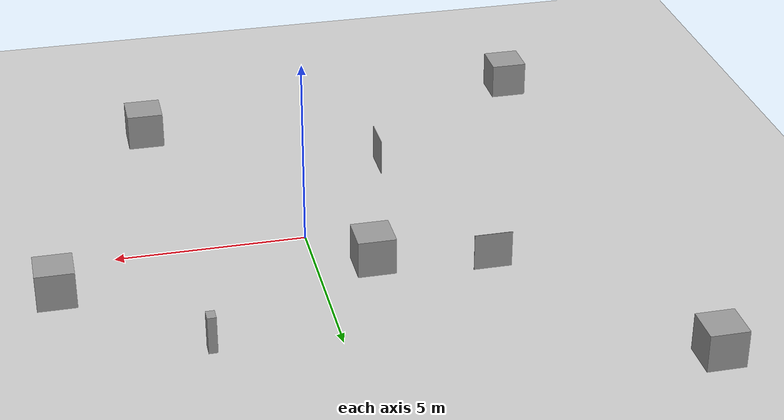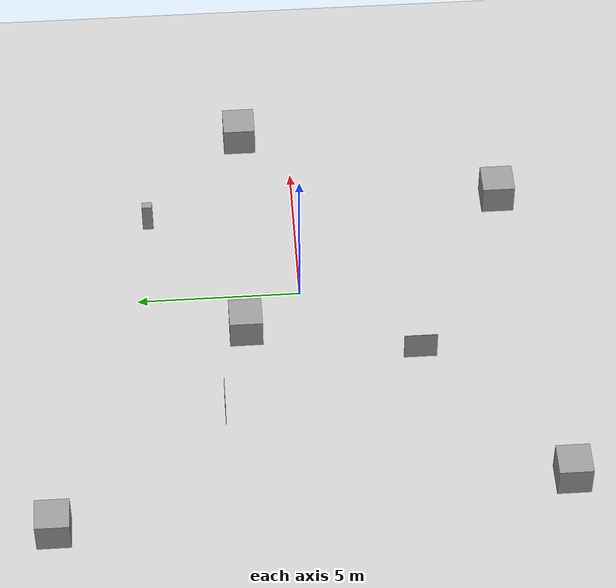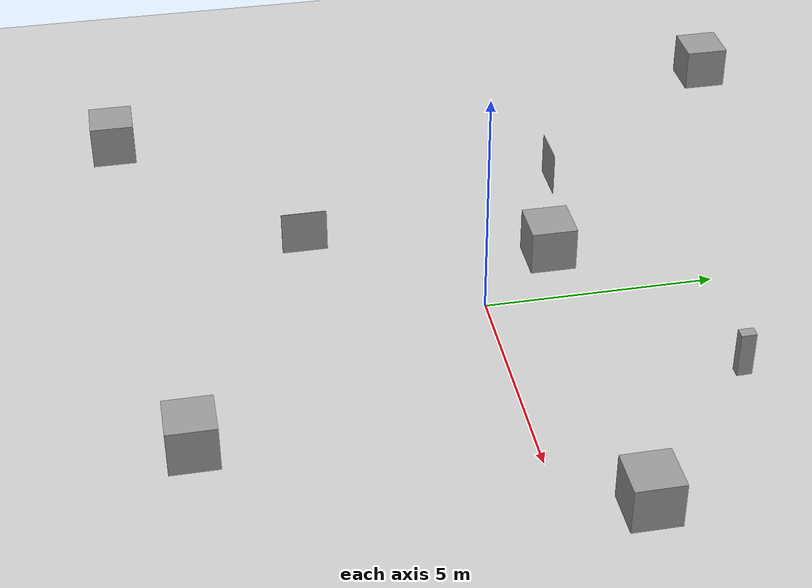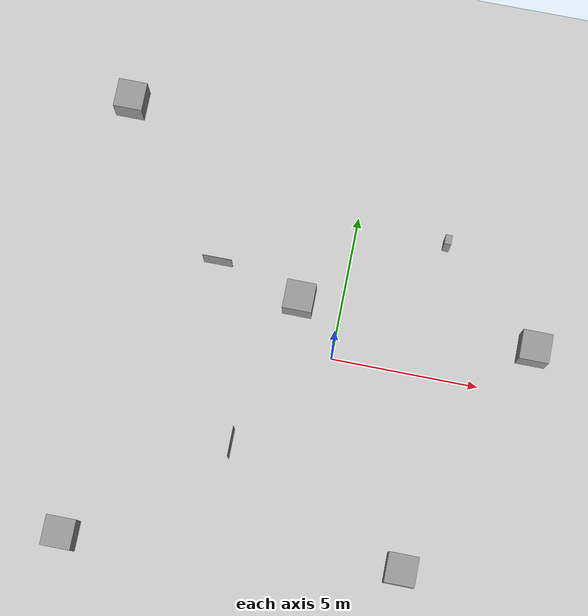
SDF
<sdf version="1.7">
 <world name="default">
  <light name="sun" type="directional">
   <pose>0 0 10 0 -0 0</pose>
   <diffuse>0.8 0.8 0.8 1</diffuse>
   <specular>0.2 0.2 0.2 1</specular>
   <attenuation>
    <range>1000</range>
    <constant>0.9</constant>
    <linear>0.01</linear>
    <quadratic>0.001</quadratic>
   </attenuation>
   <direction>-0.5 0.1 -0.9</direction>
   <spot><inner_angle>0</inner_angle><outer_angle>0</outer_angle><falloff>0</falloff></spot>
  </light>
  <model name="ground_plane">
   <static>1</static>
   <link name="link">
    <collision name="collision">
     <geometry><plane><normal>0 0 1</normal><size>100 100</size></plane></geometry>
     <surface>
      <contact><collide_bitmask>65535</collide_bitmask></contact>
      <friction><ode><mu>100</mu><mu2>50</mu2></ode></friction>
     </surface>
    </collision>
    <visual name="visual">
     <cast_shadows>0</cast_shadows>
     <geometry><plane><normal>0 0 1</normal><size>100 100</size></plane></geometry>
     <material>
      <script><uri>file://media/materials/scripts/gazebo.material</uri><name>Gazebo/Grey</name></script>
     </material>
    </visual>
   </link>
  </model>
  <gravity>0 0 -9.8</gravity>
  <magnetic_field>6e-06 2.3e-05 -4.2e-05</magnetic_field>
  <atmosphere type="adiabatic"/>
  <physics type="ode">
   <max_step_size>0.001</max_step_size>
   <real_time_factor>1</real_time_factor>
   <real_time_update_rate>1000</real_time_update_rate>
  </physics>
  <scene><ambient>0.4 0.4 0.4 1</ambient><background>0.7 0.7 0.7 1</background><shadows>1</shadows></scene>
  <spherical_coordinates>
   <surface_model>EARTH_WGS84</surface_model>
   <latitude_deg>0</latitude_deg>
   <longitude_deg>0</longitude_deg>
   <elevation>0</elevation>
   <heading_deg>0</heading_deg>
  </spherical_coordinates>
  <model name="unit_box">
   <pose>-2.72451 -3.47356 0.5 0 -0 0</pose>
   <link name="link">
    <inertial>
     <mass>1</mass>
     <inertia>
      <ixx>0.166667</ixx>
      <ixy>0</ixy>
      <ixz>0</ixz>
      <iyy>0.166667</iyy>
      <iyz>0</iyz>
      <izz>0.166667</izz>
     </inertia>
    </inertial>
    <collision name="collision"><geometry><box><size>0.0136454 1 1</size></box></geometry></collision>
    <visual name="visual">
     <geometry><box><size>0.0136454 1 1</size></box></geometry>
     <material>
      <script><name>Gazebo/Grey</name><uri>file://media/materials/scripts/gazebo.material</uri></script>
     </material>
    </visual>
   </link>
  </model>
  <model name="unit_box_0">
   <pose>-4.41612 2.49886 0.5 0 -0 0</pose>
   <link name="link">
    <inertial>
     <mass>1</mass>
     <inertia>
      <ixx>0.166667</ixx>
      <ixy>0</ixy>
      <ixz>0</ixz>
      <iyy>0.166667</iyy>
      <iyz>0</iyz>
      <izz>0.166667</izz>
     </inertia>
    </inertial>
    <collision name="collision"><geometry><box><size>1 0.0124121 1</size></box></geometry></collision>
    <visual name="visual">
     <geometry><box><size>1 0.0124121 1</size></box></geometry>
     <material>
      <script><name>Gazebo/Grey</name><uri>file://media/materials/scripts/gazebo.material</uri></script>
     </material>
    </visual>
   </link>
  </model>
  <model name="unit_box_1">
   <pose>-1.44717 1.73936 0.5 0 -0 0</pose>
   <link name="link">
    <inertial>
     <mass>1</mass>
     <inertia>
      <ixx>0.166667</ixx>
      <ixy>0</ixy>
      <ixz>0</ixz>
      <iyy>0.166667</iyy>
      <iyz>0</iyz>
      <izz>0.166667</izz>
     </inertia>
    </inertial>
    <collision name="collision"><geometry><box><size>1 1 1</size></box></geometry></collision>
    <visual name="visual">
     <geometry><box><size>1 1 1</size></box></geometry>
     <material>
      <script><name>Gazebo/Grey</name><uri>file://media/materials/scripts/gazebo.material</uri></script>
     </material>
    </visual>
   </link>
  </model>
  <model name="unit_box_2">
   <pose>3.10982 4.60474 0.5 0 -0 0</pose>
   <link name="link">
    <inertial>
     <mass>1</mass>
     <inertia>
      <ixx>0.166667</ixx>
      <ixy>0</ixy>
      <ixz>0</ixz>
      <iyy>0.166667</iyy>
      <iyz>0</iyz>
      <izz>0.166667</izz>
     </inertia>
    </inertial>
    <collision name="collision"><geometry><box><size>0.228143 0.321971 1</size></box></geometry></collision>
    <visual name="visual">
     <geometry><box><size>0.228143 0.321971 1</size></box></geometry>
     <material>
      <script><name>Gazebo/Grey</name><uri>file://media/materials/scripts/gazebo.material</uri></script>
     </material>
    </visual>
   </link>
  </model>
  <model name="unit_box_3">
   <pose>-7.59221 -7.44368 0.5 0 -0 0</pose>
   <link name="link">
    <inertial>
     <mass>1</mass>
     <inertia>
      <ixx>0.166667</ixx>
      <ixy>0</ixy>
      <ixz>0</ixz>
      <iyy>0.166667</iyy>
      <iyz>0</iyz>
      <izz>0.166667</izz>
     </inertia>
    </inertial>
    <collision name="collision"><geometry><box><size>1 1 1</size></box></geometry></collision>
    <visual name="visual">
     <geometry><box><size>1 1 1</size></box></geometry>
     <material>
      <script><name>Gazebo/Grey</name><uri>file://media/materials/scripts/gazebo.material</uri></script>
     </material>
    </visual>
   </link>
  </model>
  <model name="unit_box_4">
   <pose>3.5241 -6.47705 0.5 0 -0 0</pose>
   <link name="link">
    <inertial>
     <mass>1</mass>
     <inertia>
      <ixx>0.166667</ixx>
      <ixy>0</ixy>
      <ixz>0</ixz>
      <iyy>0.166667</iyy>
      <iyz>0</iyz>
      <izz>0.166667</izz>
     </inertia>
    </inertial>
    <collision name="collision"><geometry><box><size>1 1 1</size></box></geometry></collision>
    <visual name="visual">
     <geometry><box><size>1 1 1</size></box></geometry>
     <material>
      <script><name>Gazebo/Grey</name><uri>file://media/materials/scripts/gazebo.material</uri></script>
     </material>
    </visual>
   </link>
  </model>
  <model name="unit_box_5">
   <pose>-8.52433 7.5737 0.5 0 -0 0</pose>
   <link name="link">
    <inertial>
     <mass>1</mass>
     <inertia>
      <ixx>0.166667</ixx>
      <ixy>0</ixy>
      <ixz>0</ixz>
      <iyy>0.166667</iyy>
      <iyz>0</iyz>
      <izz>0.166667</izz>
     </inertia>
    </inertial>
    <collision name="collision"><geometry><box><size>1 1 1</size></box></geometry></collision>
    <visual name="visual">
     <geometry><box><size>1 1 1</size></box></geometry>
     <material>
      <script><name>Gazebo/Grey</name><uri>file://media/materials/scripts/gazebo.material</uri></script>
     </material>
    </visual>
   </link>
  </model>
  <model name="unit_box_6">
   <pose>6.59662 1.56675 0.5 0 -0 0</pose>
   <link name="link">
    <inertial>
     <mass>1</mass>
     <inertia>
      <ixx>0.166667</ixx>
      <ixy>0</ixy>
      <ixz>0</ixz>
      <iyy>0.166667</iyy>
      <iyz>0</iyz>
      <izz>0.166667</izz>
     </inertia>
    </inertial>
    <collision name="collision"><geometry><box><size>1 1 1</size></box></geometry></collision>
    <visual name="visual">
     <geometry><box><size>1 1 1</size></box></geometry>
     <material>
      <script><name>Gazebo/Grey</name><uri>file://media/materials/scripts/gazebo.material</uri></script>
     </material>
    </visual>
   </link>
  </model>
 </world>
</sdf>
